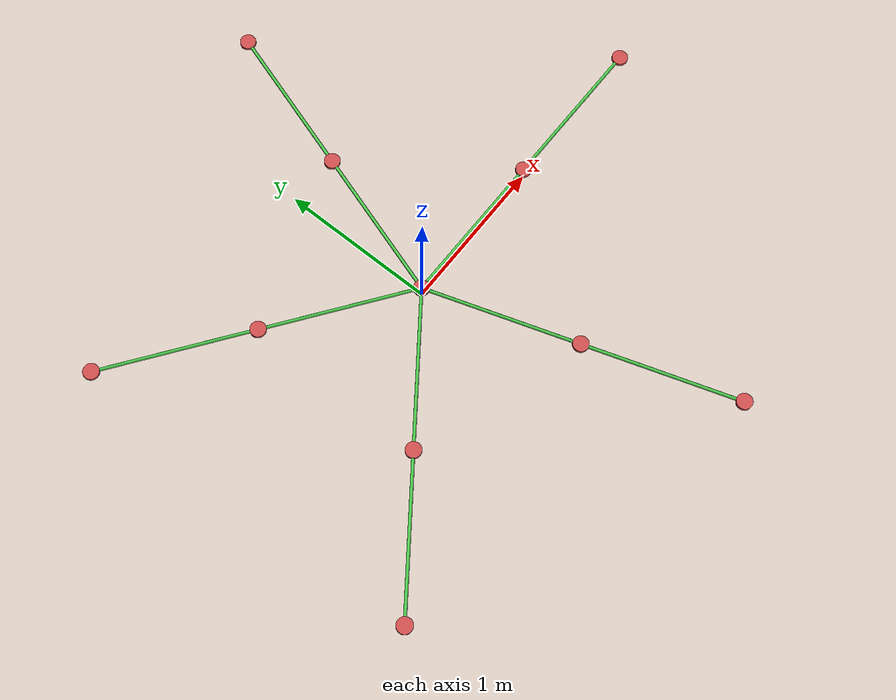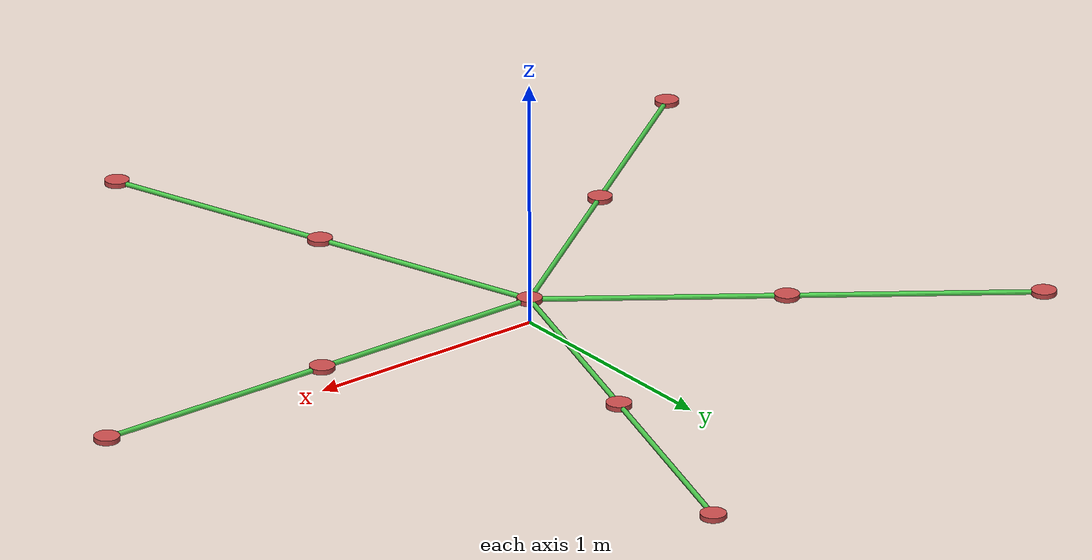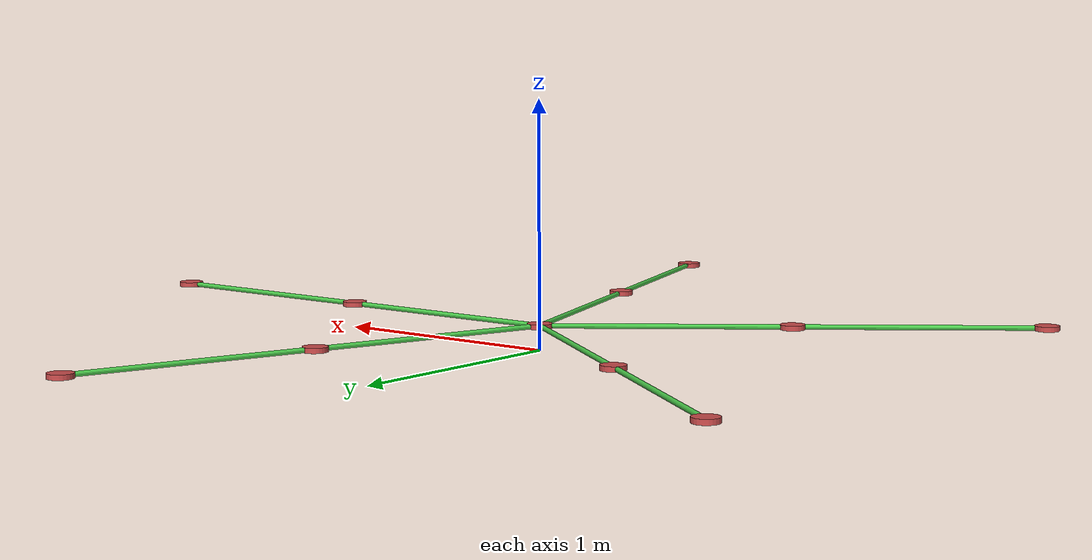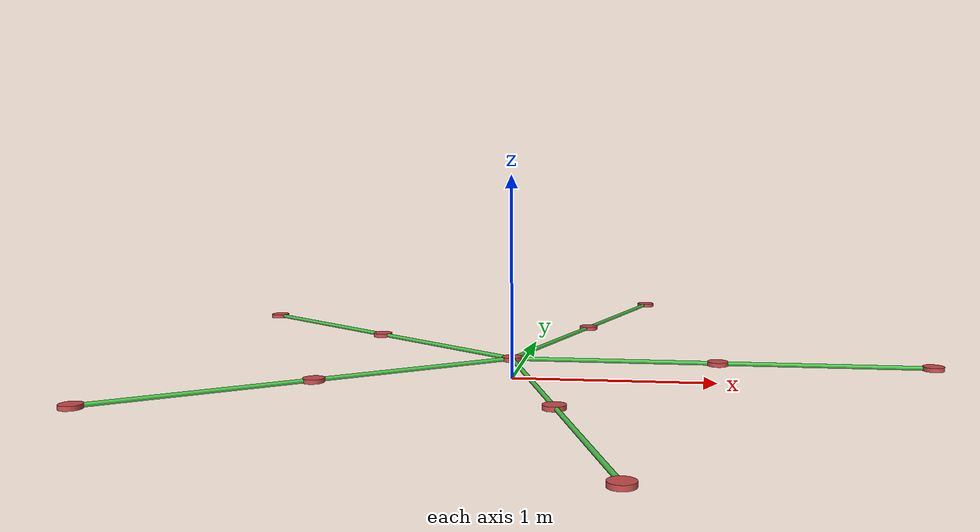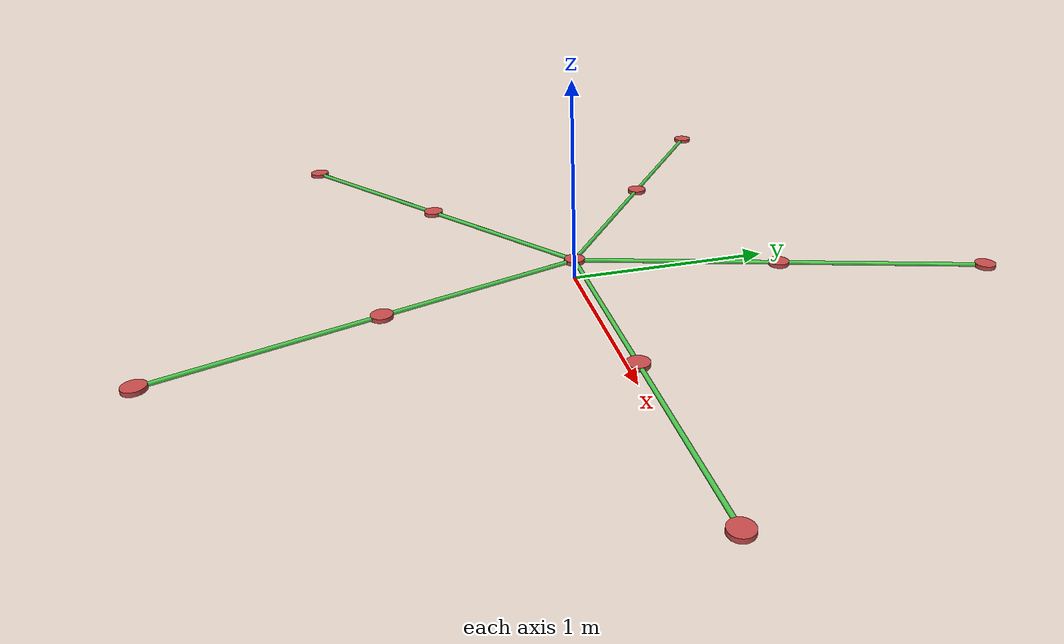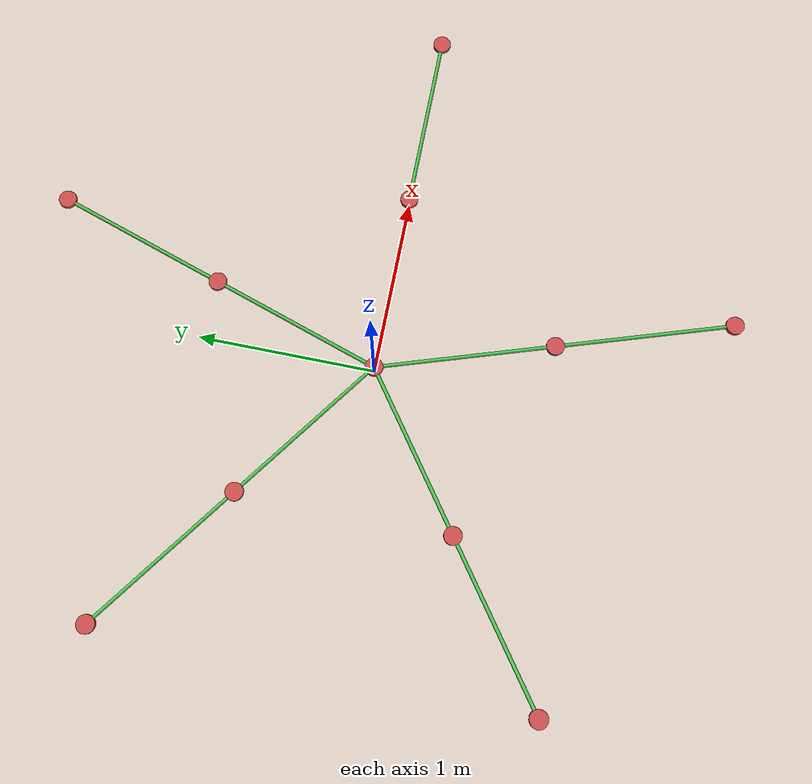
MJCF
<?xml version='1.0' encoding='UTF-8'?>
<mujoco>
  <option gravity="0 0 -9.81" timestep="0.002">
    <flag warmstart="enable"/>
  </option>
  <visual>
    <global offwidth="800" offheight="800"/>
    <quality shadowsize="4096"/>
    <map force="0.1" fogstart="3" fogend="5" znear="0.1" zfar="50"/>
  </visual>
  <asset>
    <texture type="skybox" builtin="gradient" rgb1="0.3 0.5 0.7" rgb2="0 0 0" width="512" height="512"/>
    <material name="arm1" rgba="0.8 0.3 0.3 1"/>
    <material name="arm2" rgba="0.3 0.8 0.3 1"/>
    <material name="arm3" rgba="0.3 0.3 0.8 1"/>
  </asset>
  <option gravity="0 0 -9.81" timestep="0.001">
    <flag warmstart="enable"/>
  </option>
  <default>
    <joint damping="1.0" armature="0.1" frictionloss="0.1"/>
  </default>
  <worldbody>
    <body name="base" pos="0.0 0.0 0.1">
      <geom name="base_geom" type="cylinder" size="0.05 0.01" material="arm1"/>
      <joint name="joint1" type="hinge" axis="0 0 1" pos="0 0 -0.05"/>
      <site name="site_1" pos="0 0 0"/>
      <body name="link2" pos="1.0 0.0 0">
        <geom name="link2_geom" type="cylinder" size="0.05 0.01" material="arm1"/>
        <joint name="joint2" type="hinge" axis="0 0 1" pos="0 0 -0.05"/>
        <site name="site_2" pos="0 0 0"/>
        <geom name="capsule_2_7" type="capsule" fromto="0 0 0 1.0 0.0 0.0" size="0.01" material="arm2"/>
        <site name="conn_site_2_7" pos="1.0 0.0 0.0"/>
      </body>
      <geom name="capsule_1_2" type="capsule" fromto="0 0 0 1.0 0.0 0" size="0.01" material="arm2"/>
      <body name="link3" pos="0.309 0.951 0">
        <geom name="link3_geom" type="cylinder" size="0.05 0.01" material="arm1"/>
        <joint name="joint3" type="hinge" axis="0 0 1" pos="0 0 -0.05"/>
        <site name="site_3" pos="0 0 0"/>
        <geom name="capsule_3_8" type="capsule" fromto="0 0 0 0.309 0.951 0.0" size="0.01" material="arm2"/>
        <site name="conn_site_3_8" pos="0.309 0.951 0.0"/>
      </body>
      <geom name="capsule_1_3" type="capsule" fromto="0 0 0 0.309 0.951 0" size="0.01" material="arm2"/>
      <body name="link4" pos="-0.809 0.588 0">
        <geom name="link4_geom" type="cylinder" size="0.05 0.01" material="arm1"/>
        <joint name="joint4" type="hinge" axis="0 0 1" pos="0 0 -0.05"/>
        <site name="site_4" pos="0 0 0"/>
        <geom name="capsule_4_9" type="capsule" fromto="0 0 0 -0.809 0.588 0.0" size="0.01" material="arm2"/>
        <site name="conn_site_4_9" pos="-0.809 0.588 0.0"/>
      </body>
      <geom name="capsule_1_4" type="capsule" fromto="0 0 0 -0.809 0.588 0" size="0.01" material="arm2"/>
      <body name="link5" pos="-0.809 -0.588 0">
        <geom name="link5_geom" type="cylinder" size="0.05 0.01" material="arm1"/>
        <joint name="joint5" type="hinge" axis="0 0 1" pos="0 0 -0.05"/>
        <site name="site_5" pos="0 0 0"/>
        <geom name="capsule_5_10" type="capsule" fromto="0 0 0 -0.809 -0.588 0.0" size="0.01" material="arm2"/>
        <site name="conn_site_5_10" pos="-0.809 -0.588 0.0"/>
      </body>
      <geom name="capsule_1_5" type="capsule" fromto="0 0 0 -0.809 -0.588 0" size="0.01" material="arm2"/>
      <body name="link6" pos="0.309 -0.951 0">
        <geom name="link6_geom" type="cylinder" size="0.05 0.01" material="arm1"/>
        <joint name="joint6" type="hinge" axis="0 0 1" pos="0 0 -0.05"/>
        <site name="site_6" pos="0 0 0"/>
        <geom name="capsule_6_11" type="capsule" fromto="0 0 0 0.309 -0.951 0.0" size="0.01" material="arm2"/>
        <site name="conn_site_6_11" pos="0.309 -0.951 0.0"/>
      </body>
      <geom name="capsule_1_6" type="capsule" fromto="0 0 0 0.309 -0.951 0" size="0.01" material="arm2"/>
    </body>
    <body name="end7" pos="2.0 0.0 0.1">
      <geom name="end7_geom" type="cylinder" size="0.05 0.01" material="arm1"/>
      <site name="site_7" pos="0 0 0"/>
    </body>
    <body name="end8" pos="0.618 1.902 0.1">
      <geom name="end8_geom" type="cylinder" size="0.05 0.01" material="arm1"/>
      <site name="site_8" pos="0 0 0"/>
    </body>
    <body name="end9" pos="-1.618 1.176 0.1">
      <geom name="end9_geom" type="cylinder" size="0.05 0.01" material="arm1"/>
      <site name="site_9" pos="0 0 0"/>
    </body>
    <body name="end10" pos="-1.618 -1.176 0.1">
      <geom name="end10_geom" type="cylinder" size="0.05 0.01" material="arm1"/>
      <site name="site_10" pos="0 0 0"/>
    </body>
    <body name="end11" pos="0.618 -1.902 0.1">
      <geom name="end11_geom" type="cylinder" size="0.05 0.01" material="arm1"/>
      <site name="site_11" pos="0 0 0"/>
    </body>
  </worldbody>
  <tendon>
    <spatial name="tendon_3_8" limited="true" range="0 0.0001" width="0.003" rgba="0.8 0.8 0.8 1">
      <site site="conn_site_3_8"/>
      <site site="site_8"/>
    </spatial>
    <spatial name="tendon_2_7" limited="true" range="0 0.0001" width="0.003" rgba="0.8 0.8 0.8 1">
      <site site="conn_site_2_7"/>
      <site site="site_7"/>
    </spatial>
    <spatial name="tendon_4_9" limited="true" range="0 0.0001" width="0.003" rgba="0.8 0.8 0.8 1">
      <site site="conn_site_4_9"/>
      <site site="site_9"/>
    </spatial>
    <spatial name="tendon_6_11" limited="true" range="0 0.0001" width="0.003" rgba="0.8 0.8 0.8 1">
      <site site="conn_site_6_11"/>
      <site site="site_11"/>
    </spatial>
    <spatial name="tendon_5_10" limited="true" range="0 0.0001" width="0.003" rgba="0.8 0.8 0.8 1">
      <site site="conn_site_5_10"/>
      <site site="site_10"/>
    </spatial>
  </tendon>
  <actuator>
    <position name="pos_joint1" joint="joint1" kp="10.0" ctrlrange="-3.14159 3.14159"/>
    <velocity name="vel_joint1" joint="joint1" kv="1.0"/>
    <position name="pos_joint2" joint="joint2" kp="10.0" ctrlrange="-3.14159 3.14159"/>
    <velocity name="vel_joint2" joint="joint2" kv="1.0"/>
  </actuator>
</mujoco>
